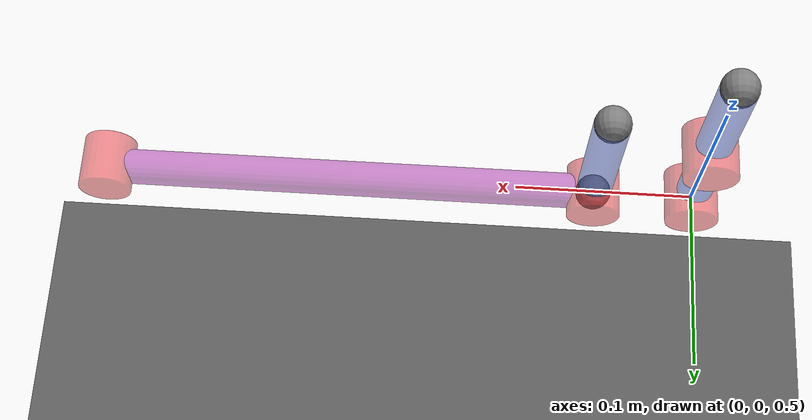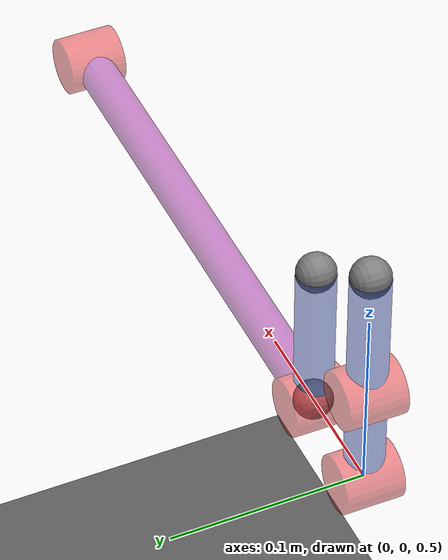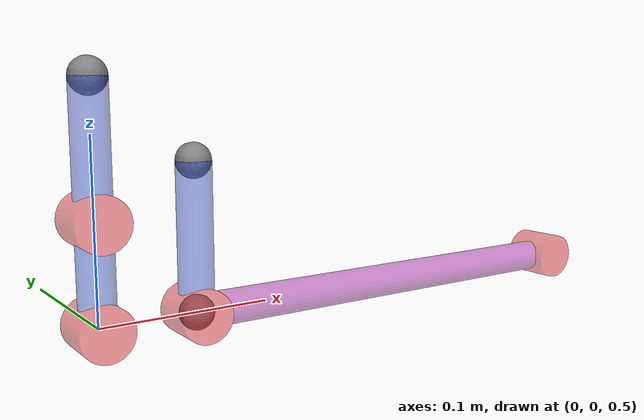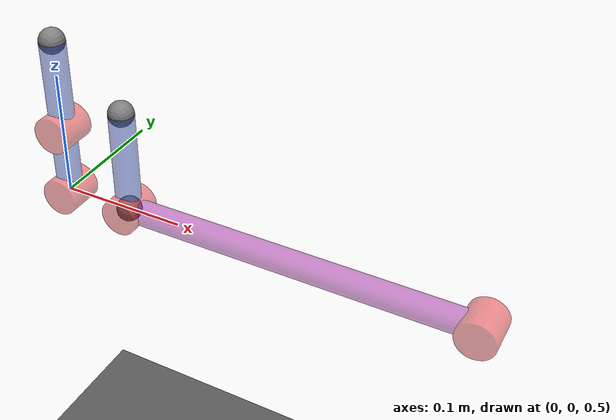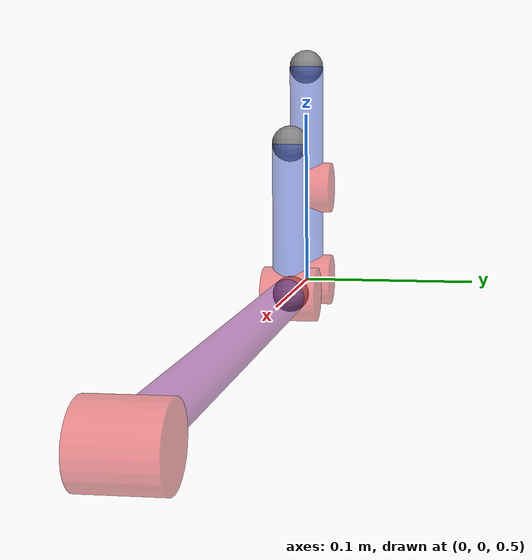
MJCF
<mujoco>

    <option timestep="1e-3"/>
    <option gravity="0 0 -9.8"/>

    <asset>
        <texture type="skybox" builtin="gradient" rgb1="1 1 1" rgb2="0.5 0.5 0.5" width="265" height="256"/>
        <texture name="grid" type="2d" builtin="checker" rgb1="0.1 0.1 0.1" rgb2="0.6 0.6 0.6" width="300" height="300"/>
        <material name="grid" texture="grid" texrepeat="10 10" reflectance="0.2"/>
    </asset>

    <worldbody>

        <light pos="0 0 10"/>
        <geom type="plane" size="0.5 0.5 0.1" material="grid"/>

        <camera name="side view" pos="0.1 -1.5 1.0" euler="90 0 0" fovy="60"/>
        <camera name="upper view" pos="0 0 1.5" euler="0 0 0"/>

        <body name="OAB1" pos="0 0 0.5" euler="-90 0 0">

            <joint name="O" type="hinge" axis="0 0 1" stiffness="0" springref="0" damping="0"/>
            <geom name="point O" type="cylinder" pos="0 0 0" size="0.015 0.015" rgba="0.89 0.14 0.16 0.5" euler="0 0 0" contype="0"/>
            <geom name="link OA" type="cylinder" pos="0 -0.028 0" size="0.01 0.028" rgba="0.21 0.32 0.82 0.5" euler="90 0 0" contype="0"/>

            <body name="AB1" pos="0 -0.056 0" euler="0 0 0">

                <joint name="A" type="hinge" axis="0 0 1" stiffness="0" springref="0" damping="0.1"/>
                <geom name="point A" type="cylinder" pos="0 0 0" size="0.015 0.015" rgba="0.89 0.14 0.16 0.5" euler="0 0 0" contype="0"/>
                <geom name="link AB" type="cylinder" pos="0 -0.0364 0" size="0.01 0.0364" rgba="0.21 0.32 0.82 0.5" euler="90 0 0" contype="0"/>
                <site name="sB1" size="0.01" pos="0 -0.0728 0"/>

            </body>

        </body>

        <body name="CB2" pos="0.056 0 0.5" euler="-90 0 0">

            <joint name="C" type="hinge" axis="0 0 1" stiffness="0" springref="0" damping="0.1"/>
            <geom name="point C" type="cylinder" pos="0 0 0" size="0.015 0.015" rgba="0.89 0.14 0.16 0.5" euler="0 0 0" contype="0"/>
            <geom name="link CB" type="cylinder" pos="0 -0.042 0" size="0.01 0.042" rgba="0.21 0.32 0.82 0.5" euler="90 0 0" contype="0"/>
            <site name="sB2" size="0.01" pos="0 -0.084 0"/>

        </body>

        <body name="DB3" pos="0.336 0 0.5" euler="-90 0 0">

            <joint name="D" type="hinge" axis="0 0 1" stiffness="0" springref="0" damping="0.1"/>
            <geom name="point D" type="cylinder" pos="0 0 0" size="0.015 0.015" rgba="0.89 0.14 0.16 0.5" euler="0 0 0" contype="0"/>

            <body name="slider" pos="-0.28 0 0" euler="0 0 0">

                <joint name="slide" type="slide" axis="1 0 0" range="0 1" damping="0.1"/>
                <geom name="link DB" type="cylinder" pos="0.14 0 0" size="0.01 0.14" rgba="0.62 0.1 0.62 0.5" euler="0 90 0" contype="0"/>
                <site name="sB3" size="0.01" pos="0 0 0"/>

            </body>

        </body>

    </worldbody>

    <equality>
        <connect site1="sB1" site2="sB2"/>
        <connect site1="sB1" site2="sB3"/>
    </equality>

    <actuator>
        <position joint="slide" ctrlrange="-0.3 0.03" ctrllimited="true" kp="1000"/>
    </actuator>

    <sensor>
        <jointpos name="O" joint="O"/>
    </sensor>

</mujoco>
